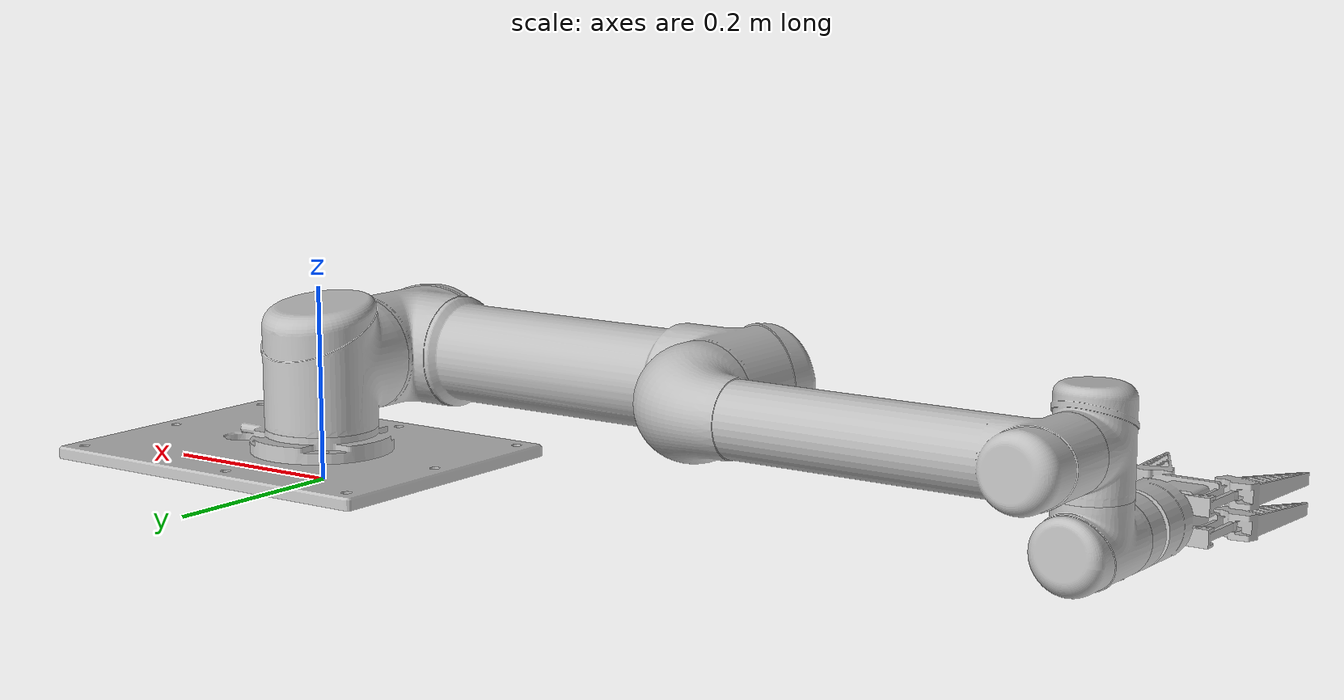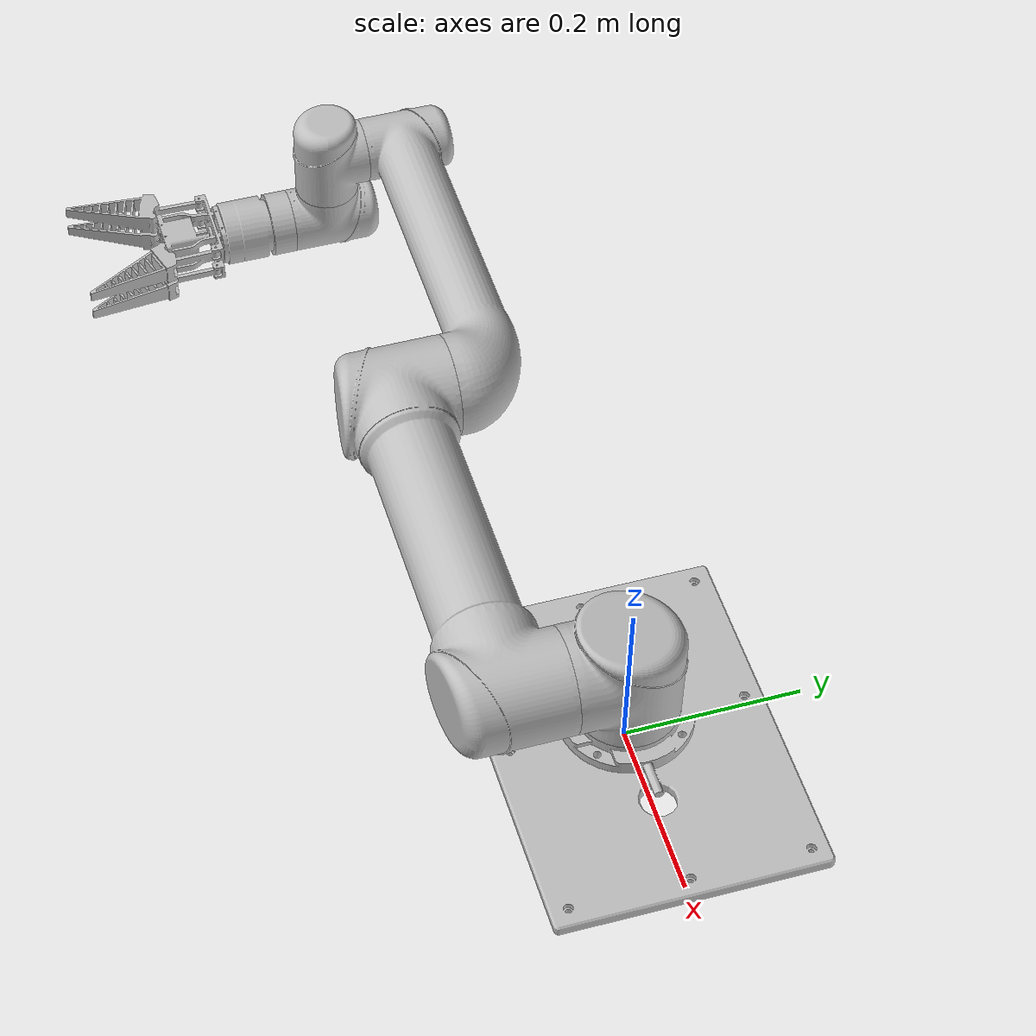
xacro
<?xml version="1.0" encoding="utf-8"?>
<robot
  name="ur5"
  xmlns:xacro="http://ros.org/wiki/xacro">
  <link name=
  "base_footprint">
  </link>

  <joint name="base_link2base_footprint" type="fixed">
      <parent link="base_footprint" />
      <child link="base_link"/>
      <origin xyz="0 0 0.032" rpy="0 0 0" />
  </joint>

  <link
    name="base_link">
    <inertial>
      <origin
        xyz="0.0235759066632154 -4.024260750256E-07 -0.00267484602059103"
        rpy="0 0 0" />
      <mass
        value="1.7590663588329" />
      <inertia
        ixx="0.0111044047546135"
        ixy="-2.43496975298582E-06"
        ixz="3.4899177892921E-07"
        iyy="0.019324958776445"
        iyz="5.4412544869659E-08"
        izz="0.0303647859152603" />
    </inertial>
    <visual>
      <origin
        xyz="0 0 0"
        rpy="0 0 0" />
      <geometry>
        <mesh
          filename="package://ur5/meshes/base_link.STL" />
      </geometry>
      <material
        name="">
        <color
          rgba="0.752941176470588 0.752941176470588 0.752941176470588 1" />
      </material>
    </visual>
    <collision>
      <origin
        xyz="0 0 0"
        rpy="0 0 0" />
      <geometry>
        <mesh
          filename="package://ur5/meshes/base_link.STL" />
      </geometry>
    </collision>
  </link>
  <link
    name="Link1">
    <inertial>
      <origin
        xyz="-4.33139494392822E-06 -0.00186927605738119 0.00924020497630284"
        rpy="0 0 0" />
      <mass
        value="1.55602216706584" />
      <inertia
        ixx="0.0028146857132453"
        ixy="-2.04222958000101E-08"
        ixz="-3.74832962999915E-08"
        iyy="0.00301831638792784"
        iyz="-0.000413432771678958"
        izz="0.00258081118256846" />
    </inertial>
    <visual>
      <origin
        xyz="0 0 0"
        rpy="0 0 0" />
      <geometry>
        <mesh
          filename="package://ur5/meshes/Link1.STL" />
      </geometry>
      <material
        name="">
        <color
          rgba="0.752941176470588 0.752941176470588 0.752941176470588 1" />
      </material>
    </visual>
    <collision>
      <origin
        xyz="0 0 0"
        rpy="0 0 0" />
      <geometry>
        <mesh
          filename="package://ur5/meshes/Link1.STL" />
      </geometry>
    </collision>
  </link>
  <joint
    name="Joint1"
    type="continuous">
    <origin
      xyz="0 0 0.0892"
      rpy="1.5708 0 0" />
    <parent
      link="base_link" />
    <child
      link="Link1" />
    <axis
      xyz="0 1 0" />
    <limit
      lower="-3.14"
      upper="3.14"
      effort="1000"
      velocity="1000" />
  </joint>
  <link
    name="Link2">
    <inertial>
      <origin
        xyz="-0.212499982180631 1.76727700529344E-09 0.134621416221834"
        rpy="0 0 0" />
      <mass
        value="5.39337122866027" />
      <inertia
        ixx="0.00808994025531996"
        ixy="-7.71587058034231E-08"
        ixz="5.77898419873088E-10"
        iyy="0.0229057488132269"
        iyz="-3.96344123140802E-10"
        izz="0.0233130078218392" />
    </inertial>
    <visual>
      <origin
        xyz="0 0 0"
        rpy="0 0 0" />
      <geometry>
        <mesh
          filename="package://ur5/meshes/Link2.STL" />
      </geometry>
      <material
        name="">
        <color
          rgba="0.752941176470588 0.752941176470588 0.752941176470588 1" />
      </material>
    </visual>
    <collision>
      <origin
        xyz="0 0 0"
        rpy="0 0 0" />
      <geometry>
        <mesh
          filename="package://ur5/meshes/Link2.STL" />
      </geometry>
    </collision>
  </link>
  <joint
    name="Joint2"
    type="continuous">
    <origin
      xyz="0 0 0"
      rpy="0 0 0" />
    <parent
      link="Link1" />
    <child
      link="Link2" />
    <axis
      xyz="0 0 1" />
    <limit
      lower="-3.14"
      upper="3.14"
      effort="1000"
      velocity="1000" />
  </joint>
  <link
    name="Link3">
    <inertial>
      <origin
        xyz="-0.184404791090397 -5.75500430366471E-07 0.00441010722354379"
        rpy="0 0 0" />
      <mass
        value="2.51896704557572" />
      <inertia
        ixx="0.00217649268314962"
        ixy="3.15920384836248E-08"
        ixz="-0.000151962208976148"
        iyy="0.00958565883046658"
        iyz="2.70874067564241E-08"
        izz="0.00967973060442219" />
    </inertial>
    <visual>
      <origin
        xyz="0 0 0"
        rpy="0 0 0" />
      <geometry>
        <mesh
          filename="package://ur5/meshes/Link3.STL" />
      </geometry>
      <material
        name="">
        <color
          rgba="0.752941176470588 0.752941176470588 0.752941176470588 1" />
      </material>
    </visual>
    <collision>
      <origin
        xyz="0 0 0"
        rpy="0 0 0" />
      <geometry>
        <mesh
          filename="package://ur5/meshes/Link3.STL" />
      </geometry>
    </collision>
  </link>
  <joint
    name="Joint3"
    type="continuous">
    <origin
      xyz="-0.425000000000001 0 0.0159999999999997"
      rpy="0 0 0" />
    <parent
      link="Link2" />
    <child
      link="Link3" />
    <axis
      xyz="0 0 -1" />
    <limit
      lower="-3.14"
      upper="3.14"
      effort="1000"
      velocity="1000" />
  </joint>
  <link
    name="Link4">
    <inertial>
      <origin
        xyz="1.47659840743497E-06 -0.0045599294197019 -0.00356635134023785"
        rpy="0 0 0" />
      <mass
        value="0.516673373591943" />
      <inertia
        ixx="0.000402129033003172"
        ixy="1.5427603534118E-09"
        ixz="7.23887278008737E-09"
        iyy="0.000372758812319602"
        iyz="-5.68882815507802E-05"
        izz="0.000409988353950142" />
    </inertial>
    <visual>
      <origin
        xyz="0 0 0"
        rpy="0 0 0" />
      <geometry>
        <mesh
          filename="package://ur5/meshes/Link4.STL" />
      </geometry>
      <material
        name="">
        <color
          rgba="0.752941176470588 0.752941176470588 0.752941176470588 1" />
      </material>
    </visual>
    <collision>
      <origin
        xyz="0 0 0"
        rpy="0 0 0" />
      <geometry>
        <mesh
          filename="package://ur5/meshes/Link4.STL" />
      </geometry>
    </collision>
  </link>
  <joint
    name="Joint4"
    type="continuous">
    <origin
      xyz="-0.392429999999999 0 0.0929999999999997"
      rpy="1.5707963267949 0 0" />
    <parent
      link="Link3" />
    <child
      link="Link4" />
    <axis
      xyz="0 1 0" />
    <limit
      lower="-3.14"
      upper="3.14"
      effort="1000"
      velocity="1000" />
  </joint>
  <link
    name="Link5">
    <inertial>
      <origin
        xyz="-1.47659840832315E-06 0.00455992941970204 -0.00356635134023789"
        rpy="0 0 0" />
      <mass
        value="0.516673373591946" />
      <inertia
        ixx="0.000402129080759367"
        ixy="1.54610002746828E-09"
        ixz="-7.23354782817657E-09"
        iyy="0.000372758849638208"
        iyz="5.68882591960725E-05"
        izz="0.000409988374505139" />
    </inertial>
    <visual>
      <origin
        xyz="0 0 0"
        rpy="0 0 0" />
      <geometry>
        <mesh
          filename="package://ur5/meshes/Link5.STL" />
      </geometry>
      <material
        name="">
        <color
          rgba="0.752941176470588 0.752941176470588 0.752941176470588 1" />
      </material>
    </visual>
    <collision>
      <origin
        xyz="0 0 0"
        rpy="0 0 0" />
      <geometry>
        <mesh
          filename="package://ur5/meshes/Link5.STL" />
      </geometry>
    </collision>
  </link>
  <joint
    name="Joint5"
    type="continuous">
    <origin
      xyz="0 0 0.0930000000000001"
      rpy="-1.5707963267949 0 0" />
    <parent
      link="Link4" />
    <child
      link="Link5" />
    <axis
      xyz="0 1 0" />
    <limit
      lower="-3.14"
      upper="3.14"
      effort="1000"
      velocity="1000" />
  </joint>
  <link
    name="Link6">
    <inertial>
      <origin
        xyz="2.60811271168837E-05 -4.07713123062102E-05 0.00134956082673351"
        rpy="0 0 0" />
      <mass
        value="0.574397760086786" />
      <inertia
        ixx="0.000269803894778329"
        ixy="-7.00926865492166E-08"
        ixz="6.17721994428448E-07"
        iyy="0.000296833277877122"
        iyz="-4.20222681335834E-08"
        izz="0.000321580918794378" />
    </inertial>
    <visual>
      <origin
        xyz="0 0 0"
        rpy="0 0 0" />
      <geometry>
        <mesh
          filename="package://ur5/meshes/Link6.STL" />
      </geometry>
      <material
        name="">
        <color
          rgba="0.752941176470588 0.752941176470588 0.752941176470588 1" />
      </material>
    </visual>
    <collision>
      <origin
        xyz="0 0 0"
        rpy="0 0 0" />
      <geometry>
        <mesh
          filename="package://ur5/meshes/Link6.STL" />
      </geometry>
    </collision>
  </link>
  <joint
    name="Joint6"
    type="continuous">
    <origin
      xyz="0 0 0.1315"
      rpy="0 0 0" />
    <parent
      link="Link5" />
    <child
      link="Link6" />
    <axis
      xyz="0 0 1" />
    <limit
      lower="-3.14"
      upper="3.14"
      effort="1000"
      velocity="1000" />
  </joint>

</robot>
